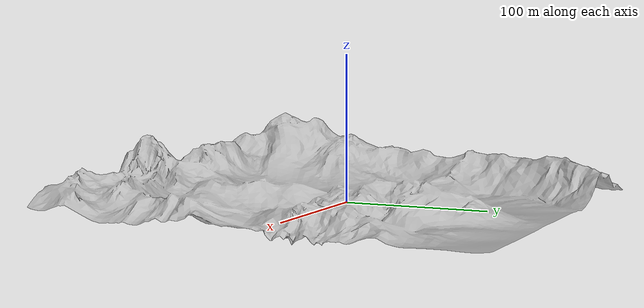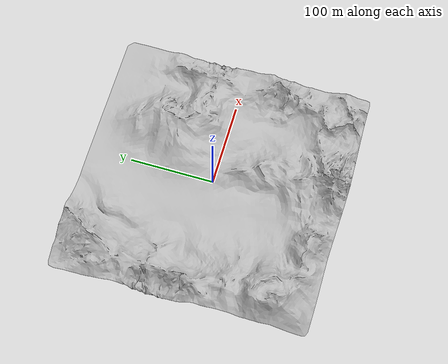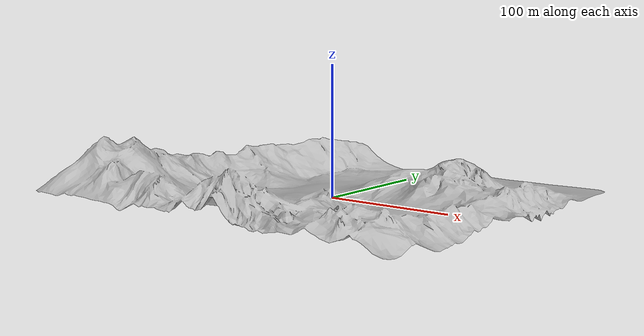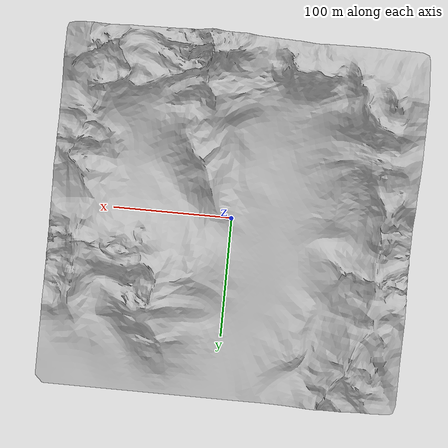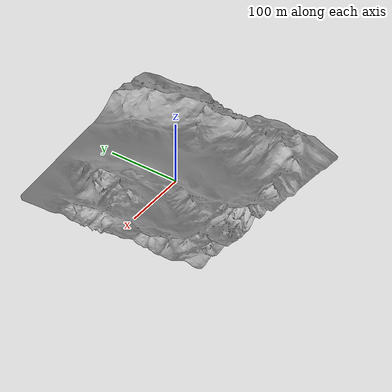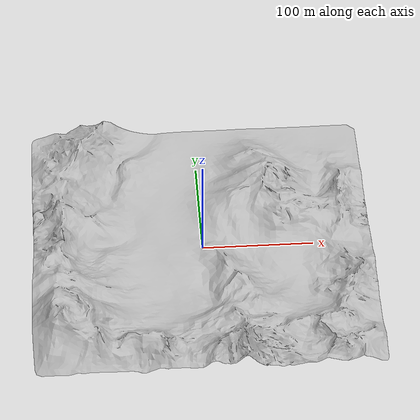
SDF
<?xml version='1.0'?>
<sdf version='1.6'>

  <model name='IIM1'>
    <link name='link_0'>
      <visual name='visual'>
        <pose frame=''>0 0 0 0 -0 0</pose>
        <geometry>
          <mesh>
            <uri>    meshes/snow-mountains.dae</uri>
            <scale>50 50 50</scale>
          </mesh>
        </geometry>
        <material>
          <lighting>1</lighting>
          <script>
            <uri>    materials/scripts</uri>
            <uri>    materials/textures</uri>
            <name>MyScence/Snow1</name>
          </script>
        </material>
        <transparency>0</transparency>
        <cast_shadows>1</cast_shadows>
      </visual>

      <collision name='collision'>
        <laser_retro>0</laser_retro>
        <max_contacts>10</max_contacts>
        <pose frame=''>0 0 0 0 -0 0</pose>
        <geometry>
          <mesh>
            <uri>    meshes/snow-mountains.dae</uri>
            <scale>50 50 50</scale>
          </mesh>
        </geometry>
        <surface>
          <friction>
            <ode>
              <mu>10</mu>
              <mu2>10</mu2>
              <fdir1>0 0 0</fdir1>
              <slip1>0</slip1>
              <slip2>0</slip2>
            </ode>
            <torsional>
              <coefficient>1</coefficient>
              <patch_radius>0</patch_radius>
              <surface_radius>0</surface_radius>
              <use_patch_radius>1</use_patch_radius>
              <ode>
                <slip>0</slip>
              </ode>
            </torsional>
          </friction>
          <bounce>
            <restitution_coefficient>0</restitution_coefficient>
            <threshold>1e+06</threshold>
          </bounce>
          <contact>
            <collide_without_contact>0</collide_without_contact>
            <collide_without_contact_bitmask>1</collide_without_contact_bitmask>
            <collide_bitmask>1</collide_bitmask>
            <ode>
              <soft_cfm>0</soft_cfm>
              <soft_erp>0.2</soft_erp>
              <kp>1e+13</kp>
              <kd>1</kd>
              <max_vel>0.01</max_vel>
              <min_depth>0</min_depth>
            </ode>
            <bullet>
              <split_impulse>1</split_impulse>
              <split_impulse_penetration_threshold>-0.01</split_impulse_penetration_threshold>
              <soft_cfm>0</soft_cfm>
              <soft_erp>0.2</soft_erp>
              <kp>1e+13</kp>
              <kd>1</kd>
            </bullet>
          </contact>
        </surface>
      </collision>
    </link>

    <static>1</static>
    <allow_auto_disable>false</allow_auto_disable>

  </model>

</sdf>
